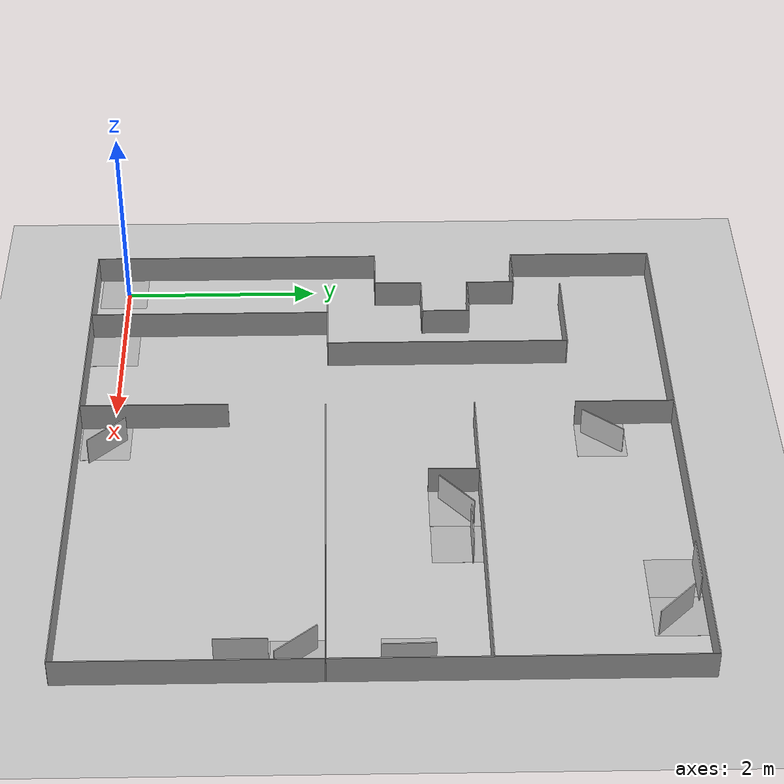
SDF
<sdf version="1.6">
 <world name="default">
  <light name="sun" type="directional">
   <pose>0 0 10 0 -0 0</pose>
   <diffuse>0.8 0.8 0.8 1</diffuse>
   <specular>0.2 0.2 0.2 1</specular>
   <attenuation>
    <range>1000</range>
    <constant>0.9</constant>
    <linear>0.01</linear>
    <quadratic>0.001</quadratic>
   </attenuation>
   <direction>-0.5 0.1 -0.9</direction>
  </light>
  <model name="ground_plane">
   <static>1</static>
   <link name="link">
    <collision name="collision">
     <geometry><plane><normal>0 0 1</normal><size>100 100</size></plane></geometry>
     <surface>
      <contact><collide_bitmask>65535</collide_bitmask></contact>
      <friction><ode><mu>100</mu><mu2>50</mu2></ode></friction>
     </surface>
    </collision>
    <visual name="visual">
     <cast_shadows>0</cast_shadows>
     <geometry><plane><normal>0 0 1</normal><size>100 100</size></plane></geometry>
     <material>
      <script><uri>file://media/materials/scripts/gazebo.material</uri><name>Gazebo/Grey</name></script>
     </material>
    </visual>
   </link>
  </model>
  <gravity>0 0 -9.8</gravity>
  <magnetic_field>6e-06 2.3e-05 -4.2e-05</magnetic_field>
  <atmosphere type="adiabatic"/>
  <physics name="default_physics" default="0" type="ode">
   <max_step_size>0.001</max_step_size>
   <real_time_factor>1</real_time_factor>
   <real_time_update_rate>1000</real_time_update_rate>
  </physics>
  <scene><ambient>0.4 0.4 0.4 1</ambient><background>0.7 0.7 0.7 1</background><shadows>1</shadows></scene>
  <audio><device>default</device></audio>
  <spherical_coordinates>
   <surface_model>EARTH_WGS84</surface_model>
   <latitude_deg>0</latitude_deg>
   <longitude_deg>0</longitude_deg>
   <elevation>0</elevation>
   <heading_deg>0</heading_deg>
  </spherical_coordinates>
  <model name="arena">
   <pose>2.72717 2.66142 0 0 -0 0</pose>
   <link name="Wall_1">
    <collision name="Wall_1_Collision">
     <geometry><box><size>6 0.01 0.3</size></box></geometry>
     <pose>0 0 0.15 0 -0 0</pose>
    </collision>
    <visual name="Wall_1_Visual">
     <pose>0 0 0.15 0 -0 0</pose>
     <geometry><box><size>6 0.01 0.3</size></box></geometry>
     <material>
      <script><uri>file://media/materials/scripts/gazebo.material</uri><name>Gazebo/Grey</name></script>
      <ambient>1 1 1 1</ambient>
     </material>
     <meta><layer>0</layer></meta>
    </visual>
    <pose>0.001988 -2.99751 0 0 -0 0</pose>
   </link>
   <link name="Wall_11">
    <collision name="Wall_11_Collision">
     <geometry><box><size>1.5 0.01 0.3</size></box></geometry>
     <pose>0 0 0.15 0 -0 0</pose>
    </collision>
    <visual name="Wall_11_Visual">
     <pose>0 0 0.15 0 -0 0</pose>
     <geometry><box><size>1.5 0.01 0.3</size></box></geometry>
     <material>
      <script><uri>file://media/materials/scripts/gazebo.material</uri><name>Gazebo/Grey</name></script>
      <ambient>1 1 1 1</ambient>
     </material>
     <meta><layer>0</layer></meta>
    </visual>
    <pose>-2.99841 2.25251 0 0 -0 1.5708</pose>
   </link>
   <link name="Wall_20">
    <collision name="Wall_20_Collision">
     <geometry><box><size>0.5 0.01 0.3</size></box></geometry>
     <pose>0 0 0.15 0 -0 0</pose>
    </collision>
    <visual name="Wall_20_Visual">
     <pose>0 0 0.15 0 -0 0</pose>
     <geometry><box><size>0.5 0.01 0.3</size></box></geometry>
     <material>
      <script><uri>file://media/materials/scripts/gazebo.material</uri><name>Gazebo/Grey</name></script>
      <ambient>1 1 1 1</ambient>
     </material>
     <meta><layer>0</layer></meta>
    </visual>
    <pose>-2.75425 1.50057 0 0 -0 0</pose>
   </link>
   <link name="Wall_22">
    <collision name="Wall_22_Collision">
     <geometry><box><size>0.5 0.01 0.3</size></box></geometry>
     <pose>0 0 0.15 0 -0 0</pose>
    </collision>
    <visual name="Wall_22_Visual">
     <pose>0 0 0.15 0 -0 0</pose>
     <geometry><box><size>0.5 0.01 0.3</size></box></geometry>
     <material>
      <script><uri>file://media/materials/scripts/gazebo.material</uri><name>Gazebo/Grey</name></script>
      <ambient>1 1 1 1</ambient>
     </material>
     <meta><layer>0</layer></meta>
    </visual>
    <pose>-2.50969 1.25495 0 0 -0 1.5708</pose>
   </link>
   <link name="Wall_24">
    <collision name="Wall_24_Collision">
     <geometry><box><size>0.5 0.01 0.3</size></box></geometry>
     <pose>0 0 0.15 0 -0 0</pose>
    </collision>
    <visual name="Wall_24_Visual">
     <pose>0 0 0.15 0 -0 0</pose>
     <geometry><box><size>0.5 0.01 0.3</size></box></geometry>
     <material>
      <script><uri>file://media/materials/scripts/gazebo.material</uri><name>Gazebo/Grey</name></script>
      <ambient>1 1 1 1</ambient>
     </material>
     <meta><layer>0</layer></meta>
    </visual>
    <pose>-2.26459 1.00122 0 0 -0 0</pose>
   </link>
   <link name="Wall_28">
    <collision name="Wall_28_Collision">
     <geometry><box><size>0.5 0.01 0.3</size></box></geometry>
     <pose>0 0 0.15 0 -0 0</pose>
    </collision>
    <visual name="Wall_28_Visual">
     <pose>0 0 0.15 0 -0 0</pose>
     <geometry><box><size>0.5 0.01 0.3</size></box></geometry>
     <material>
      <script><uri>file://media/materials/scripts/gazebo.material</uri><name>Gazebo/Grey</name></script>
      <ambient>1 1 1 1</ambient>
     </material>
     <meta><layer>0</layer></meta>
    </visual>
    <pose>-2.01503 0.755808 0 0 -0 -1.5708</pose>
   </link>
   <link name="Wall_30">
    <collision name="Wall_30_Collision">
     <geometry><box><size>0.5 0.01 0.3</size></box></geometry>
     <pose>0 0 0.15 0 -0 0</pose>
    </collision>
    <visual name="Wall_30_Visual">
     <pose>0 0 0.15 0 -0 0</pose>
     <geometry><box><size>0.5 0.01 0.3</size></box></geometry>
     <material>
      <script><uri>file://media/materials/scripts/gazebo.material</uri><name>Gazebo/Grey</name></script>
      <ambient>1 1 1 1</ambient>
     </material>
     <meta><layer>0</layer></meta>
    </visual>
    <pose>-2.25991 0.503524 0 0 -0 0</pose>
   </link>
   <link name="Wall_34">
    <collision name="Wall_34_Collision">
     <geometry><box><size>0.5 0.01 0.3</size></box></geometry>
     <pose>0 0 0.15 0 -0 0</pose>
    </collision>
    <visual name="Wall_34_Visual">
     <pose>0 0 0.15 0 -0 0</pose>
     <geometry><box><size>0.5 0.01 0.3</size></box></geometry>
     <material>
      <script><uri>file://media/materials/scripts/gazebo.material</uri><name>Gazebo/Grey</name></script>
      <ambient>1 1 1 1</ambient>
     </material>
     <meta><layer>0</layer></meta>
    </visual>
    <pose>-2.50907 0.257403 0 0 -0 -1.5708</pose>
   </link>
   <link name="Wall_36">
    <collision name="Wall_36_Collision">
     <geometry><box><size>0.5 0.01 0.3</size></box></geometry>
     <pose>0 0 0.15 0 -0 0</pose>
    </collision>
    <visual name="Wall_36_Visual">
     <pose>0 0 0.15 0 -0 0</pose>
     <geometry><box><size>0.5 0.01 0.3</size></box></geometry>
     <material>
      <script><uri>file://media/materials/scripts/gazebo.material</uri><name>Gazebo/Grey</name></script>
      <ambient>1 1 1 1</ambient>
     </material>
     <meta><layer>0</layer></meta>
    </visual>
    <pose>-2.75227 0.011599 0 0 -0 0</pose>
   </link>
   <link name="Wall_38">
    <collision name="Wall_38_Collision">
     <geometry><box><size>3.012 0.01 0.3</size></box></geometry>
     <pose>0 0 0.15 0 -0 0</pose>
    </collision>
    <visual name="Wall_38_Visual">
     <pose>0 0 0.15 0 -0 0</pose>
     <geometry><box><size>3.012 0.01 0.3</size></box></geometry>
     <material>
      <script><uri>file://media/materials/scripts/gazebo.material</uri><name>Gazebo/Grey</name></script>
      <ambient>1 1 1 1</ambient>
     </material>
     <meta><layer>0</layer></meta>
    </visual>
    <pose>-2.99601 -1.49551 0 0 -0 -1.5708</pose>
   </link>
   <link name="Wall_41">
    <collision name="Wall_41_Collision">
     <geometry><box><size>1 0.01 0.3</size></box></geometry>
     <pose>0 0 0.15 0 -0 0</pose>
    </collision>
    <visual name="Wall_41_Visual">
     <pose>0 0 0.15 0 -0 0</pose>
     <geometry><box><size>1 0.01 0.3</size></box></geometry>
     <material>
      <script><uri>file://media/materials/scripts/gazebo.material</uri><name>Gazebo/Grey</name></script>
      <ambient>1 1 1 1</ambient>
     </material>
     <meta><layer>0</layer></meta>
    </visual>
    <pose>-0.498279 2.49812 0 0 -0 1.5708</pose>
   </link>
   <link name="Wall_44">
    <collision name="Wall_44_Collision">
     <geometry><box><size>3.5 0.01 0.3</size></box></geometry>
     <pose>0 0 0.15 0 -0 0</pose>
    </collision>
    <visual name="Wall_44_Visual">
     <pose>0 0 0.15 0 -0 0</pose>
     <geometry><box><size>3.5 0.01 0.3</size></box></geometry>
     <material>
      <script><uri>file://media/materials/scripts/gazebo.material</uri><name>Gazebo/Grey</name></script>
      <ambient>1 1 1 1</ambient>
     </material>
     <meta><layer>0</layer></meta>
    </visual>
    <pose>1.25071 0.982331 0 0 -0 0</pose>
   </link>
   <link name="Wall_46">
    <collision name="Wall_46_Collision">
     <geometry><box><size>0.5 0.01 0.3</size></box></geometry>
     <pose>0 0 0.15 0 -0 0</pose>
    </collision>
    <visual name="Wall_46_Visual">
     <pose>0 0 0.15 0 -0 0</pose>
     <geometry><box><size>0.5 0.01 0.3</size></box></geometry>
     <material>
      <script><uri>file://media/materials/scripts/gazebo.material</uri><name>Gazebo/Grey</name></script>
      <ambient>1 1 1 1</ambient>
     </material>
     <meta><layer>0</layer></meta>
    </visual>
    <pose>0.496275 0.729352 0 0 -0 1.5708</pose>
   </link>
   <link name="Wall_48">
    <collision name="Wall_48_Collision">
     <geometry><box><size>3.5 0.01 0.3</size></box></geometry>
     <pose>0 0 0.15 0 -0 0</pose>
    </collision>
    <visual name="Wall_48_Visual">
     <pose>0 0 0.15 0 -0 0</pose>
     <geometry><box><size>3.5 0.01 0.3</size></box></geometry>
     <material>
      <script><uri>file://media/materials/scripts/gazebo.material</uri><name>Gazebo/Grey</name></script>
      <ambient>1 1 1 1</ambient>
     </material>
     <meta><layer>0</layer></meta>
    </visual>
    <pose>1.25425 -0.520404 0 0 -0 0</pose>
   </link>
   <link name="Wall_50">
    <collision name="Wall_50_Collision">
     <geometry><box><size>1.5 0.01 0.3</size></box></geometry>
     <pose>0 0 0.15 0 -0 0</pose>
    </collision>
    <visual name="Wall_50_Visual">
     <pose>0 0 0.15 0 -0 0</pose>
     <geometry><box><size>1.5 0.01 0.3</size></box></geometry>
     <material>
      <script><uri>file://media/materials/scripts/gazebo.material</uri><name>Gazebo/Grey</name></script>
      <ambient>1 1 1 1</ambient>
     </material>
     <meta><layer>0</layer></meta>
    </visual>
    <pose>-0.512233 -2.25115 0 0 -0 -1.5708</pose>
   </link>
   <link name="Wall_52">
    <collision name="Wall_52_Collision">
     <geometry><box><size>2.5 0.01 0.3</size></box></geometry>
     <pose>0 0 0.15 0 -0 0</pose>
    </collision>
    <visual name="Wall_52_Visual">
     <pose>0 0 0.15 0 -0 0</pose>
     <geometry><box><size>2.5 0.01 0.3</size></box></geometry>
     <material>
      <script><uri>file://media/materials/scripts/gazebo.material</uri><name>Gazebo/Grey</name></script>
      <ambient>1 1 1 1</ambient>
     </material>
     <meta><layer>0</layer></meta>
    </visual>
    <pose>-2.00505 -1.74423 0 0 -0 -1.5708</pose>
   </link>
   <link name="Wall_54">
    <collision name="Wall_54_Collision">
     <geometry><box><size>1 0.01 0.3</size></box></geometry>
     <pose>0 0 0.15 0 -0 0</pose>
    </collision>
    <visual name="Wall_54_Visual">
     <pose>0 0 0.15 0 -0 0</pose>
     <geometry><box><size>1 0.01 0.3</size></box></geometry>
     <material>
      <script><uri>file://media/materials/scripts/gazebo.material</uri><name>Gazebo/Grey</name></script>
      <ambient>1 1 1 1</ambient>
     </material>
     <meta><layer>0</layer></meta>
    </visual>
    <pose>-1.98078 -0.499121 0 0 -0 0</pose>
   </link>
   <link name="Wall_56">
    <collision name="Wall_56_Collision">
     <geometry><box><size>2.5 0.01 0.3</size></box></geometry>
     <pose>0 0 0.15 0 -0 0</pose>
    </collision>
    <visual name="Wall_56_Visual">
     <pose>0 0 0.15 0 -0 0</pose>
     <geometry><box><size>2.5 0.01 0.3</size></box></geometry>
     <material>
      <script><uri>file://media/materials/scripts/gazebo.material</uri><name>Gazebo/Grey</name></script>
      <ambient>1 1 1 1</ambient>
     </material>
     <meta><layer>0</layer></meta>
    </visual>
    <pose>-1.48616 0.751059 0 0 -0 -1.5708</pose>
   </link>
   <link name="Wall_58">
    <collision name="Wall_58_Collision">
     <geometry><box><size>1 0.01 0.3</size></box></geometry>
     <pose>0 0 0.15 0 -0 0</pose>
    </collision>
    <visual name="Wall_58_Visual">
     <pose>0 0 0.15 0 -0 0</pose>
     <geometry><box><size>1 0.01 0.3</size></box></geometry>
     <material>
      <script><uri>file://media/materials/scripts/gazebo.material</uri><name>Gazebo/Grey</name></script>
      <ambient>1 1 1 1</ambient>
     </material>
     <meta><layer>0</layer></meta>
    </visual>
    <pose>-1.9786 2.00012 0 0 -0 0</pose>
   </link>
   <link name="Wall_6">
    <collision name="Wall_6_Collision">
     <geometry><box><size>6 0.01 0.3</size></box></geometry>
     <pose>0 0 0.15 0 -0 0</pose>
    </collision>
    <visual name="Wall_6_Visual">
     <pose>0 0 0.15 0 -0 0</pose>
     <geometry><box><size>6 0.01 0.3</size></box></geometry>
     <material>
      <script><uri>file://media/materials/scripts/gazebo.material</uri><name>Gazebo/Grey</name></script>
      <ambient>1 1 1 1</ambient>
     </material>
     <meta><layer>0</layer></meta>
    </visual>
    <pose>2.99837 -0.000334 0 0 -0 -1.5708</pose>
   </link>
   <link name="Wall_8">
    <collision name="Wall_8_Collision">
     <geometry><box><size>6 0.01 0.3</size></box></geometry>
     <pose>0 0 0.15 0 -0 0</pose>
    </collision>
    <visual name="Wall_8_Visual">
     <pose>0 0 0.15 0 -0 0</pose>
     <geometry><box><size>6 0.01 0.3</size></box></geometry>
     <material>
      <script><uri>file://media/materials/scripts/gazebo.material</uri><name>Gazebo/Grey</name></script>
      <ambient>1 1 1 1</ambient>
     </material>
     <meta><layer>0</layer></meta>
    </visual>
    <pose>-0.003034 2.99691 0 0 -0 0</pose>
   </link>
   <static>1</static>
  </model>
  <model name="start_plane">
   <static>1</static>
   <link name="link">
    <collision name="collision">
     <geometry><plane><normal>0 0 1</normal><size>0.5 0.5</size></plane></geometry>
     <surface><friction><ode><mu>100</mu><mu2>50</mu2></ode></friction></surface>
    </collision>
    <visual name="visual">
     <cast_shadows>0</cast_shadows>
     <geometry><plane><normal>0 0 1</normal><size>0.5 0.5</size></plane></geometry>
     <material>
      <script>
       <uri>model://start_plane/materials/scripts</uri>
       <uri>model://start_plane/materials/textures/</uri>
       <name>StartPlane/Image</name>
      </script>
     </material>
    </visual>
   </link>
   <pose>-0.018469 -0.051337 0 0 -0 0</pose>
  </model>
  <model name="end_plane">
   <static>1</static>
   <link name="link">
    <collision name="collision">
     <geometry><plane><normal>0 0 1</normal><size>0.5 0.5</size></plane></geometry>
     <surface><friction><ode><mu>100</mu><mu2>50</mu2></ode></friction></surface>
    </collision>
    <visual name="visual">
     <cast_shadows>0</cast_shadows>
     <geometry><plane><normal>0 0 1</normal><size>0.5 0.5</size></plane></geometry>
     <material>
      <script>
       <uri>model://end_plane/materials/scripts</uri>
       <uri>model://end_plane/materials/textures/</uri>
       <name>EndPlane/Image</name>
      </script>
     </material>
    </visual>
   </link>
   <pose>0.969955 -0.083763 0 0 -0 0</pose>
  </model>
  <model name="end_plane_2">
   <static>1</static>
   <link name="link">
    <collision name="collision">
     <geometry><plane><normal>0 0 1</normal><size>0.5 0.5</size></plane></geometry>
     <surface><friction><ode><mu>100</mu><mu2>50</mu2></ode></friction></surface>
    </collision>
    <visual name="visual">
     <cast_shadows>0</cast_shadows>
     <geometry><plane><normal>0 0 1</normal><size>0.5 0.5</size></plane></geometry>
     <material>
      <script>
       <uri>model://end_plane/materials/scripts</uri>
       <uri>model://end_plane/materials/textures/</uri>
       <name>EndPlane/Image</name>
      </script>
     </material>
    </visual>
   </link>
   <pose>4.47135 5.4022 0 0 -0 0</pose>
  </model>
  <model name="end_plane_1">
   <static>1</static>
   <link name="link">
    <collision name="collision">
     <geometry><plane><normal>0 0 1</normal><size>0.5 0.5</size></plane></geometry>
     <surface><friction><ode><mu>100</mu><mu2>50</mu2></ode></friction></surface>
    </collision>
    <visual name="visual">
     <cast_shadows>0</cast_shadows>
     <geometry><plane><normal>0 0 1</normal><size>0.5 0.5</size></plane></geometry>
     <material>
      <script>
       <uri>model://end_plane/materials/scripts</uri>
       <uri>model://end_plane/materials/textures/</uri>
       <name>EndPlane/Image</name>
      </script>
     </material>
    </visual>
   </link>
   <pose>5.45751 2.89676 0 0 -0 0</pose>
  </model>
  <model name="end_plane_0">
   <static>1</static>
   <link name="link">
    <collision name="collision">
     <geometry><plane><normal>0 0 1</normal><size>0.5 0.5</size></plane></geometry>
     <surface><friction><ode><mu>100</mu><mu2>50</mu2></ode></friction></surface>
    </collision>
    <visual name="visual">
     <cast_shadows>0</cast_shadows>
     <geometry><plane><normal>0 0 1</normal><size>0.5 0.5</size></plane></geometry>
     <material>
      <script>
       <uri>model://end_plane/materials/scripts</uri>
       <uri>model://end_plane/materials/textures/</uri>
       <name>EndPlane/Image</name>
      </script>
     </material>
    </visual>
   </link>
   <pose>5.47441 1.38885 0 0 -0 0</pose>
  </model>
  <model name="end_plane_3">
   <static>1</static>
   <link name="link">
    <collision name="collision">
     <geometry><plane><normal>0 0 1</normal><size>0.5 0.5</size></plane></geometry>
     <surface><friction><ode><mu>100</mu><mu2>50</mu2></ode></friction></surface>
    </collision>
    <visual name="visual">
     <cast_shadows>0</cast_shadows>
     <geometry><plane><normal>0 0 1</normal><size>0.5 0.5</size></plane></geometry>
     <material>
      <script>
       <uri>model://end_plane/materials/scripts</uri>
       <uri>model://end_plane/materials/textures/</uri>
       <name>EndPlane/Image</name>
      </script>
     </material>
    </visual>
   </link>
   <pose>4.96884 5.40246 0 0 -0 0</pose>
  </model>
  <model name="end_plane_5">
   <static>1</static>
   <link name="link">
    <collision name="collision">
     <geometry><plane><normal>0 0 1</normal><size>0.5 0.5</size></plane></geometry>
     <surface><friction><ode><mu>100</mu><mu2>50</mu2></ode></friction></surface>
    </collision>
    <visual name="visual">
     <cast_shadows>0</cast_shadows>
     <geometry><plane><normal>0 0 1</normal><size>0.5 0.5</size></plane></geometry>
     <material>
      <script>
       <uri>model://end_plane/materials/scripts</uri>
       <uri>model://end_plane/materials/textures/</uri>
       <name>EndPlane/Image</name>
      </script>
     </material>
    </visual>
   </link>
   <pose>2.48339 4.90662 0 0 -0 0</pose>
  </model>
  <model name="end_plane_4">
   <static>1</static>
   <link name="link">
    <collision name="collision">
     <geometry><plane><normal>0 0 1</normal><size>0.5 0.5</size></plane></geometry>
     <surface><friction><ode><mu>100</mu><mu2>50</mu2></ode></friction></surface>
    </collision>
    <visual name="visual">
     <cast_shadows>0</cast_shadows>
     <geometry><plane><normal>0 0 1</normal><size>0.5 0.5</size></plane></geometry>
     <material>
      <script>
       <uri>model://end_plane/materials/scripts</uri>
       <uri>model://end_plane/materials/textures/</uri>
       <name>EndPlane/Image</name>
      </script>
     </material>
    </visual>
   </link>
   <pose>3.47452 3.39334 0 0 -0 0</pose>
  </model>
  <model name="end_plane_6">
   <static>1</static>
   <link name="link">
    <collision name="collision">
     <geometry><plane><normal>0 0 1</normal><size>0.5 0.5</size></plane></geometry>
     <surface><friction><ode><mu>100</mu><mu2>50</mu2></ode></friction></surface>
    </collision>
    <visual name="visual">
     <cast_shadows>0</cast_shadows>
     <geometry><plane><normal>0 0 1</normal><size>0.5 0.5</size></plane></geometry>
     <material>
      <script>
       <uri>model://end_plane/materials/scripts</uri>
       <uri>model://end_plane/materials/textures/</uri>
       <name>EndPlane/Image</name>
      </script>
     </material>
    </visual>
   </link>
   <pose>3.9754 3.3971 0 0 -0 0</pose>
  </model>
  <model name="end_plane_7">
   <static>1</static>
   <link name="link">
    <collision name="collision">
     <geometry><plane><normal>0 0 1</normal><size>0.5 0.5</size></plane></geometry>
     <surface><friction><ode><mu>100</mu><mu2>50</mu2></ode></friction></surface>
    </collision>
    <visual name="visual">
     <cast_shadows>0</cast_shadows>
     <geometry><plane><normal>0 0 1</normal><size>0.5 0.5</size></plane></geometry>
     <material>
      <script>
       <uri>model://end_plane/materials/scripts</uri>
       <uri>model://end_plane/materials/textures/</uri>
       <name>EndPlane/Image</name>
      </script>
     </material>
    </visual>
   </link>
   <pose>2.45637 -0.066117 0 0 -0 0</pose>
  </model>
  <model name="end_plane_8">
   <static>1</static>
   <link name="link">
    <collision name="collision">
     <geometry><plane><normal>0 0 1</normal><size>0.5 0.5</size></plane></geometry>
     <surface><friction><ode><mu>100</mu><mu2>50</mu2></ode></friction></surface>
    </collision>
    <visual name="visual">
     <cast_shadows>0</cast_shadows>
     <geometry><plane><normal>0 0 1</normal><size>0.5 0.5</size></plane></geometry>
     <material>
      <script>
       <uri>model://end_plane/materials/scripts</uri>
       <uri>model://end_plane/materials/textures/</uri>
       <name>EndPlane/Image</name>
      </script>
     </material>
    </visual>
   </link>
   <pose>5.47376 1.8834 0 0 -0 0</pose>
  </model>
  <model name="06-sofa-1">
   <link name="link_0">
    <inertial>
     <mass>1</mass>
     <inertia>
      <ixx>0.166667</ixx>
      <ixy>0</ixy>
      <ixz>0</ixz>
      <iyy>0.166667</iyy>
      <iyz>0</iyz>
      <izz>0.166667</izz>
     </inertia>
    </inertial>
    <visual name="visual">
     <geometry><box><size>0.5 0.01 0.3</size></box></geometry>
     <material>
      <script>
       <uri>model://06-sofa-1/materials/scripts</uri>
       <uri>model://06-sofa-1/materials/textures/</uri>
       <name>Targets/06-sofa-1</name>
      </script>
     </material>
    </visual>
    <collision name="collision">
     <geometry><box><size>0.5 0.01 0.3</size></box></geometry>
     <surface>
      <friction>
       <ode><mu>1</mu><mu2>1</mu2><fdir1>0 0 0</fdir1><slip1>0</slip1><slip2>0</slip2></ode>
       <torsional>
        <coefficient>1</coefficient>
        <patch_radius>0</patch_radius>
        <surface_radius>0</surface_radius>
        <use_patch_radius>1</use_patch_radius>
        <ode><slip>0</slip></ode>
       </torsional>
      </friction>
      <bounce><restitution_coefficient>0</restitution_coefficient><threshold>1e+06</threshold></bounce>
      <contact>
       <collide_without_contact>0</collide_without_contact>
       <collide_without_contact_bitmask>1</collide_without_contact_bitmask>
       <collide_bitmask>1</collide_bitmask>
       <ode>
        <soft_cfm>0</soft_cfm>
        <soft_erp>0.2</soft_erp>
        <kp>1e+13</kp>
        <kd>1</kd>
        <max_vel>0.01</max_vel>
        <min_depth>0</min_depth>
       </ode>
       <bullet>
        <split_impulse>1</split_impulse>
        <split_impulse_penetration_threshold>-0.01</split_impulse_penetration_threshold>
        <soft_cfm>0</soft_cfm>
        <soft_erp>0.2</soft_erp>
        <kp>1e+13</kp>
        <kd>1</kd>
       </bullet>
      </contact>
     </surface>
    </collision>
   </link>
   <static>0</static>
   <pose>2.51289 4.912 0.149996 -2e-06 -0 0.888882</pose>
  </model>
  <model name="04-tv-4">
   <link name="link_0">
    <inertial>
     <mass>1</mass>
     <inertia>
      <ixx>0.166667</ixx>
      <ixy>0</ixy>
      <ixz>0</ixz>
      <iyy>0.166667</iyy>
      <iyz>0</iyz>
      <izz>0.166667</izz>
     </inertia>
    </inertial>
    <visual name="visual">
     <geometry><box><size>0.5 0.01 0.3</size></box></geometry>
     <material>
      <script>
       <uri>model://04-tv-4/materials/scripts</uri>
       <uri>model://04-tv-4/materials/textures/</uri>
       <name>Targets/04-tv-4</name>
      </script>
     </material>
    </visual>
    <collision name="collision">
     <geometry><box><size>0.5 0.01 0.3</size></box></geometry>
     <surface>
      <friction>
       <ode><mu>1</mu><mu2>1</mu2><fdir1>0 0 0</fdir1><slip1>0</slip1><slip2>0</slip2></ode>
       <torsional>
        <coefficient>1</coefficient>
        <patch_radius>0</patch_radius>
        <surface_radius>0</surface_radius>
        <use_patch_radius>1</use_patch_radius>
        <ode><slip>0</slip></ode>
       </torsional>
      </friction>
      <bounce><restitution_coefficient>0</restitution_coefficient><threshold>1e+06</threshold></bounce>
      <contact>
       <collide_without_contact>0</collide_without_contact>
       <collide_without_contact_bitmask>1</collide_without_contact_bitmask>
       <collide_bitmask>1</collide_bitmask>
       <ode>
        <soft_cfm>0</soft_cfm>
        <soft_erp>0.2</soft_erp>
        <kp>1e+13</kp>
        <kd>1</kd>
        <max_vel>0.01</max_vel>
        <min_depth>0</min_depth>
       </ode>
       <bullet>
        <split_impulse>1</split_impulse>
        <split_impulse_penetration_threshold>-0.01</split_impulse_penetration_threshold>
        <soft_cfm>0</soft_cfm>
        <soft_erp>0.2</soft_erp>
        <kp>1e+13</kp>
        <kd>1</kd>
       </bullet>
      </contact>
     </surface>
    </collision>
   </link>
   <static>0</static>
   <pose>4.5251 5.6138 0.149991 -1e-06 0 0</pose>
  </model>
  <model name="02-dog">
   <link name="link_0">
    <inertial>
     <mass>1</mass>
     <inertia>
      <ixx>0.166667</ixx>
      <ixy>0</ixy>
      <ixz>0</ixz>
      <iyy>0.166667</iyy>
      <iyz>0</iyz>
      <izz>0.166667</izz>
     </inertia>
    </inertial>
    <visual name="visual">
     <geometry><box><size>0.5 0.01 0.3</size></box></geometry>
     <material>
      <script>
       <uri>model://02-dog/materials/scripts</uri>
       <uri>model://02-dog/materials/textures/</uri>
       <name>Targets/02-dog</name>
      </script>
     </material>
    </visual>
    <collision name="collision">
     <geometry><box><size>0.5 0.01 0.3</size></box></geometry>
     <surface>
      <friction>
       <ode><mu>1</mu><mu2>1</mu2><fdir1>0 0 0</fdir1><slip1>0</slip1><slip2>0</slip2></ode>
       <torsional>
        <coefficient>1</coefficient>
        <patch_radius>0</patch_radius>
        <surface_radius>0</surface_radius>
        <use_patch_radius>1</use_patch_radius>
        <ode><slip>0</slip></ode>
       </torsional>
      </friction>
      <bounce><restitution_coefficient>0</restitution_coefficient><threshold>1e+06</threshold></bounce>
      <contact>
       <collide_without_contact>0</collide_without_contact>
       <collide_without_contact_bitmask>1</collide_without_contact_bitmask>
       <collide_bitmask>1</collide_bitmask>
       <ode>
        <soft_cfm>0</soft_cfm>
        <soft_erp>0.2</soft_erp>
        <kp>1e+13</kp>
        <kd>1</kd>
        <max_vel>0.01</max_vel>
        <min_depth>0</min_depth>
       </ode>
       <bullet>
        <split_impulse>1</split_impulse>
        <split_impulse_penetration_threshold>-0.01</split_impulse_penetration_threshold>
        <soft_cfm>0</soft_cfm>
        <soft_erp>0.2</soft_erp>
        <kp>1e+13</kp>
        <kd>1</kd>
       </bullet>
      </contact>
     </surface>
    </collision>
   </link>
   <static>0</static>
   <pose>5.02221 5.36233 0.149998 2e-06 -0 -0.782917</pose>
  </model>
  <model name="07-apples">
   <link name="link_0">
    <inertial>
     <mass>1</mass>
     <inertia>
      <ixx>0.166667</ixx>
      <ixy>0</ixy>
      <ixz>0</ixz>
      <iyy>0.166667</iyy>
      <iyz>0</iyz>
      <izz>0.166667</izz>
     </inertia>
    </inertial>
    <visual name="visual">
     <geometry><box><size>0.5 0.01 0.3</size></box></geometry>
     <material>
      <script>
       <uri>model://07-apples/materials/scripts</uri>
       <uri>model://07-apples/materials/textures/</uri>
       <name>Targets/07-apples</name>
      </script>
     </material>
    </visual>
    <collision name="collision">
     <geometry><box><size>0.5 0.01 0.3</size></box></geometry>
     <surface>
      <friction>
       <ode><mu>1</mu><mu2>1</mu2><fdir1>0 0 0</fdir1><slip1>0</slip1><slip2>0</slip2></ode>
       <torsional>
        <coefficient>1</coefficient>
        <patch_radius>0</patch_radius>
        <surface_radius>0</surface_radius>
        <use_patch_radius>1</use_patch_radius>
        <ode><slip>0</slip></ode>
       </torsional>
      </friction>
      <bounce><restitution_coefficient>0</restitution_coefficient><threshold>1e+06</threshold></bounce>
      <contact>
       <collide_without_contact>0</collide_without_contact>
       <collide_without_contact_bitmask>1</collide_without_contact_bitmask>
       <collide_bitmask>1</collide_bitmask>
       <ode>
        <soft_cfm>0</soft_cfm>
        <soft_erp>0.2</soft_erp>
        <kp>1e+13</kp>
        <kd>1</kd>
        <max_vel>0.01</max_vel>
        <min_depth>0</min_depth>
       </ode>
       <bullet>
        <split_impulse>1</split_impulse>
        <split_impulse_penetration_threshold>-0.01</split_impulse_penetration_threshold>
        <soft_cfm>0</soft_cfm>
        <soft_erp>0.2</soft_erp>
        <kp>1e+13</kp>
        <kd>1</kd>
       </bullet>
      </contact>
     </surface>
    </collision>
   </link>
   <static>0</static>
   <pose>3.50465 3.40669 0.149994 2e-06 -0 0.714469</pose>
  </model>
  <model name="01-spoon">
   <link name="link_0">
    <inertial>
     <mass>1</mass>
     <inertia>
      <ixx>0.166667</ixx>
      <ixy>0</ixy>
      <ixz>0</ixz>
      <iyy>0.166667</iyy>
      <iyz>0</iyz>
      <izz>0.166667</izz>
     </inertia>
    </inertial>
    <visual name="visual">
     <geometry><box><size>0.5 0.01 0.3</size></box></geometry>
     <material>
      <script>
       <uri>model://01-spoon/materials/scripts</uri>
       <uri>model://01-spoon/materials/textures/</uri>
       <name>Targets/01-spoon</name>
      </script>
     </material>
    </visual>
    <collision name="collision">
     <geometry><box><size>0.5 0.01 0.3</size></box></geometry>
     <surface>
      <friction>
       <ode><mu>1</mu><mu2>1</mu2><fdir1>0 0 0</fdir1><slip1>0</slip1><slip2>0</slip2></ode>
       <torsional>
        <coefficient>1</coefficient>
        <patch_radius>0</patch_radius>
        <surface_radius>0</surface_radius>
        <use_patch_radius>1</use_patch_radius>
        <ode><slip>0</slip></ode>
       </torsional>
      </friction>
      <bounce><restitution_coefficient>0</restitution_coefficient><threshold>1e+06</threshold></bounce>
      <contact>
       <collide_without_contact>0</collide_without_contact>
       <collide_without_contact_bitmask>1</collide_without_contact_bitmask>
       <collide_bitmask>1</collide_bitmask>
       <ode>
        <soft_cfm>0</soft_cfm>
        <soft_erp>0.2</soft_erp>
        <kp>1e+13</kp>
        <kd>1</kd>
        <max_vel>0.01</max_vel>
        <min_depth>0</min_depth>
       </ode>
       <bullet>
        <split_impulse>1</split_impulse>
        <split_impulse_penetration_threshold>-0.01</split_impulse_penetration_threshold>
        <soft_cfm>0</soft_cfm>
        <soft_erp>0.2</soft_erp>
        <kp>1e+13</kp>
        <kd>1</kd>
       </bullet>
      </contact>
     </surface>
    </collision>
   </link>
   <static>0</static>
   <pose>3.98929 3.53821 0.149996 2e-06 -0 0</pose>
  </model>
  <model name="01-spoons">
   <link name="link_0">
    <inertial>
     <mass>1</mass>
     <inertia>
      <ixx>0.166667</ixx>
      <ixy>0</ixy>
      <ixz>0</ixz>
      <iyy>0.166667</iyy>
      <iyz>0</iyz>
      <izz>0.166667</izz>
     </inertia>
    </inertial>
    <visual name="visual">
     <geometry><box><size>0.5 0.01 0.3</size></box></geometry>
     <material>
      <script>
       <uri>model://01-spoons/materials/scripts</uri>
       <uri>model://01-spoons/materials/textures/</uri>
       <name>Targets/01-spoons</name>
      </script>
     </material>
    </visual>
    <collision name="collision">
     <geometry><box><size>0.5 0.01 0.3</size></box></geometry>
     <surface>
      <friction>
       <ode><mu>1</mu><mu2>1</mu2><fdir1>0 0 0</fdir1><slip1>0</slip1><slip2>0</slip2></ode>
       <torsional>
        <coefficient>1</coefficient>
        <patch_radius>0</patch_radius>
        <surface_radius>0</surface_radius>
        <use_patch_radius>1</use_patch_radius>
        <ode><slip>0</slip></ode>
       </torsional>
      </friction>
      <bounce><restitution_coefficient>0</restitution_coefficient><threshold>1e+06</threshold></bounce>
      <contact>
       <collide_without_contact>0</collide_without_contact>
       <collide_without_contact_bitmask>1</collide_without_contact_bitmask>
       <collide_bitmask>1</collide_bitmask>
       <ode>
        <soft_cfm>0</soft_cfm>
        <soft_erp>0.2</soft_erp>
        <kp>1e+13</kp>
        <kd>1</kd>
        <max_vel>0.01</max_vel>
        <min_depth>0</min_depth>
       </ode>
       <bullet>
        <split_impulse>1</split_impulse>
        <split_impulse_penetration_threshold>-0.01</split_impulse_penetration_threshold>
        <soft_cfm>0</soft_cfm>
        <soft_erp>0.2</soft_erp>
        <kp>1e+13</kp>
        <kd>1</kd>
       </bullet>
      </contact>
     </surface>
    </collision>
   </link>
   <static>0</static>
   <pose>5.55233 2.89068 0.149999 -2e-06 -0 -1.55129</pose>
  </model>
  <model name="00-blank">
   <link name="link_0">
    <inertial>
     <mass>1</mass>
     <inertia>
      <ixx>0.166667</ixx>
      <ixy>0</ixy>
      <ixz>0</ixz>
      <iyy>0.166667</iyy>
      <iyz>0</iyz>
      <izz>0.166667</izz>
     </inertia>
    </inertial>
    <visual name="visual">
     <geometry><box><size>0.5 0.01 0.3</size></box></geometry>
     <material>
      <script>
       <uri>model://00-blank/materials/scripts</uri>
       <uri>model://00-blank/materials/textures/</uri>
       <name>Targets/00-blank</name>
      </script>
     </material>
    </visual>
    <collision name="collision">
     <geometry><box><size>0.5 0.01 0.3</size></box></geometry>
     <surface>
      <friction>
       <ode><mu>1</mu><mu2>1</mu2><fdir1>0 0 0</fdir1><slip1>0</slip1><slip2>0</slip2></ode>
       <torsional>
        <coefficient>1</coefficient>
        <patch_radius>0</patch_radius>
        <surface_radius>0</surface_radius>
        <use_patch_radius>1</use_patch_radius>
        <ode><slip>0</slip></ode>
       </torsional>
      </friction>
      <bounce><restitution_coefficient>0</restitution_coefficient><threshold>1e+06</threshold></bounce>
      <contact>
       <collide_without_contact>0</collide_without_contact>
       <collide_without_contact_bitmask>1</collide_without_contact_bitmask>
       <collide_bitmask>1</collide_bitmask>
       <ode>
        <soft_cfm>0</soft_cfm>
        <soft_erp>0.2</soft_erp>
        <kp>1e+13</kp>
        <kd>1</kd>
        <max_vel>0.01</max_vel>
        <min_depth>0</min_depth>
       </ode>
       <bullet>
        <split_impulse>1</split_impulse>
        <split_impulse_penetration_threshold>-0.01</split_impulse_penetration_threshold>
        <soft_cfm>0</soft_cfm>
        <soft_erp>0.2</soft_erp>
        <kp>1e+13</kp>
        <kd>1</kd>
       </bullet>
      </contact>
     </surface>
    </collision>
   </link>
   <static>0</static>
   <pose>5.47053 1.87466 0.149995 -8.2e-05 -6e-06 -0.876732</pose>
  </model>
  <model name="03-bed-3">
   <link name="link_0">
    <inertial>
     <mass>1</mass>
     <inertia>
      <ixx>0.166667</ixx>
      <ixy>0</ixy>
      <ixz>0</ixz>
      <iyy>0.166667</iyy>
      <iyz>0</iyz>
      <izz>0.166667</izz>
     </inertia>
    </inertial>
    <visual name="visual">
     <geometry><box><size>0.5 0.01 0.3</size></box></geometry>
     <material>
      <script>
       <uri>model://03-bed-3/materials/scripts</uri>
       <uri>model://03-bed-3/materials/textures/</uri>
       <name>Targets/03-bed-3</name>
      </script>
     </material>
    </visual>
    <collision name="collision">
     <geometry><box><size>0.5 0.01 0.3</size></box></geometry>
     <surface>
      <friction>
       <ode><mu>1</mu><mu2>1</mu2><fdir1>0 0 0</fdir1><slip1>0</slip1><slip2>0</slip2></ode>
       <torsional>
        <coefficient>1</coefficient>
        <patch_radius>0</patch_radius>
        <surface_radius>0</surface_radius>
        <use_patch_radius>1</use_patch_radius>
        <ode><slip>0</slip></ode>
       </torsional>
      </friction>
      <bounce><restitution_coefficient>0</restitution_coefficient><threshold>1e+06</threshold></bounce>
      <contact>
       <collide_without_contact>0</collide_without_contact>
       <collide_without_contact_bitmask>1</collide_without_contact_bitmask>
       <collide_bitmask>1</collide_bitmask>
       <ode>
        <soft_cfm>0</soft_cfm>
        <soft_erp>0.2</soft_erp>
        <kp>1e+13</kp>
        <kd>1</kd>
        <max_vel>0.01</max_vel>
        <min_depth>0</min_depth>
       </ode>
       <bullet>
        <split_impulse>1</split_impulse>
        <split_impulse_penetration_threshold>-0.01</split_impulse_penetration_threshold>
        <soft_cfm>0</soft_cfm>
        <soft_erp>0.2</soft_erp>
        <kp>1e+13</kp>
        <kd>1</kd>
       </bullet>
      </contact>
     </surface>
    </collision>
   </link>
   <static>0</static>
   <pose>5.47049 1.37611 0.149993 -2e-06 -0 -1.56713</pose>
  </model>
  <model name="05-person-1">
   <link name="link_0">
    <inertial>
     <mass>1</mass>
     <inertia>
      <ixx>0.166667</ixx>
      <ixy>0</ixy>
      <ixz>0</ixz>
      <iyy>0.166667</iyy>
      <iyz>0</iyz>
      <izz>0.166667</izz>
     </inertia>
    </inertial>
    <visual name="visual">
     <geometry><box><size>0.5 0.01 0.3</size></box></geometry>
     <material>
      <script>
       <uri>model://05-person-1/materials/scripts</uri>
       <uri>model://05-person-1/materials/textures/</uri>
       <name>Targets/05-person-1</name>
      </script>
     </material>
    </visual>
    <collision name="collision">
     <geometry><box><size>0.5 0.01 0.3</size></box></geometry>
     <surface>
      <friction>
       <ode><mu>1</mu><mu2>1</mu2><fdir1>0 0 0</fdir1><slip1>0</slip1><slip2>0</slip2></ode>
       <torsional>
        <coefficient>1</coefficient>
        <patch_radius>0</patch_radius>
        <surface_radius>0</surface_radius>
        <use_patch_radius>1</use_patch_radius>
        <ode><slip>0</slip></ode>
       </torsional>
      </friction>
      <bounce><restitution_coefficient>0</restitution_coefficient><threshold>1e+06</threshold></bounce>
      <contact>
       <collide_without_contact>0</collide_without_contact>
       <collide_without_contact_bitmask>1</collide_without_contact_bitmask>
       <collide_bitmask>1</collide_bitmask>
       <ode>
        <soft_cfm>0</soft_cfm>
        <soft_erp>0.2</soft_erp>
        <kp>1e+13</kp>
        <kd>1</kd>
        <max_vel>0.01</max_vel>
        <min_depth>0</min_depth>
       </ode>
       <bullet>
        <split_impulse>1</split_impulse>
        <split_impulse_penetration_threshold>-0.01</split_impulse_penetration_threshold>
        <soft_cfm>0</soft_cfm>
        <soft_erp>0.2</soft_erp>
        <kp>1e+13</kp>
        <kd>1</kd>
       </bullet>
      </contact>
     </surface>
    </collision>
   </link>
   <static>0</static>
   <pose>2.57437 -0.040082 0.149998 8.4e-05 -1e-06 -0.803116</pose>
  </model>
 </world>
</sdf>
